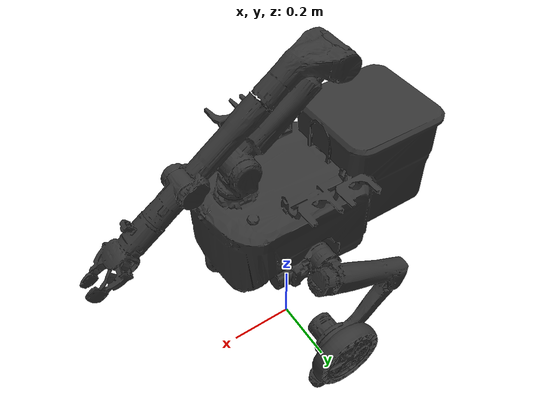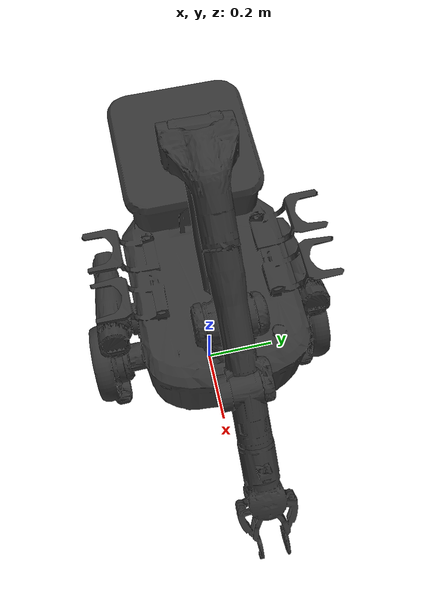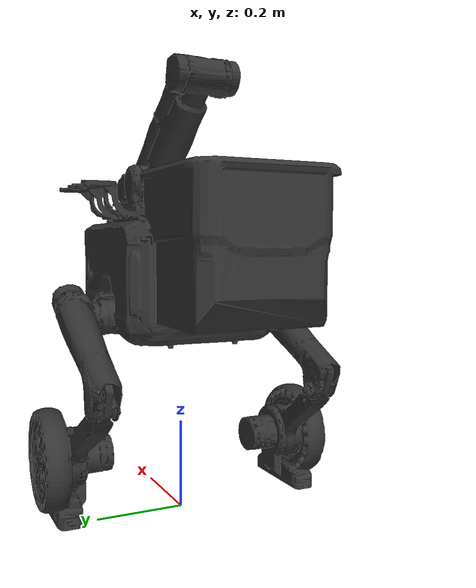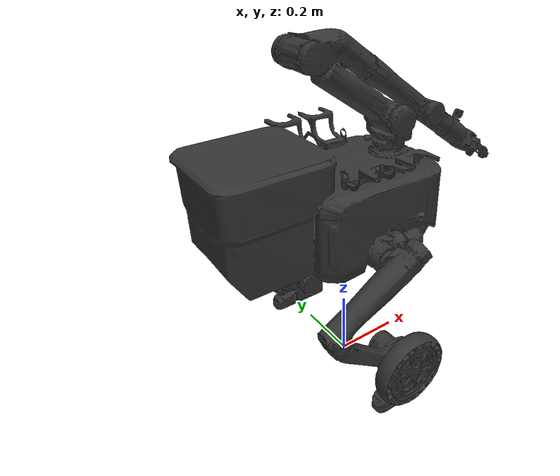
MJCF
<mujoco model="cowa_wheel_legged_v0.2">
  <compiler angle="radian" meshdir="assets/" />

  <default>
    <default class="cowa_wheel_legged_v0.2">
      <default class="visual">
        <geom group="2" type="mesh" density="0" material="silver" contype="0" conaffinity="0"/>
      </default>
      <default class="collision">
        <geom group="3" rgba=".2 .6 .2 .3" type="capsule" contype="1" conaffinity="1"/>
      </default>
      <site group="5" rgba="1 0 0 1"/>
    </default>
  </default>

  <asset>
    <material name="silver" rgba="0.7 0.7 0.7 1"/>
    <material name="black" rgba="0.2 0.2 0.2 1"/>
    <mesh name="base_link" file="base_link.STL" />
    <mesh name="link1" file="link1.STL" />
    <mesh name="link2" file="link2.STL" />
    <mesh name="link3" file="link3.STL" />
    <mesh name="link4" file="link4.STL" />
    <mesh name="link5" file="link5.STL" />
    <mesh name="link6" file="link6.STL" />
    <mesh name="left_hip_roll_link" file="left_hip_roll_link.STL" />
    <mesh name="left_hip_pitch_link" file="left_hip_pitch_link.STL" />
    <mesh name="left_knee_pitch_link" file="left_knee_pitch_link.STL" />
    <mesh name="left_wheel_link" file="left_wheel_link.STL" />
    <mesh name="left_foot_link" file="left_foot_link.STL" />
    <mesh name="right_hip_roll_link" file="right_hip_roll_link.STL" />
    <mesh name="right_hip_pitch_link" file="right_hip_pitch_link.STL" />
    <mesh name="right_knee_pitch_link" file="right_knee_pitch_link.STL" />
    <mesh name="right_wheel_link" file="right_wheel_link.STL" />
    <mesh name="right_foot_link" file="right_foot_link.STL" />
  </asset>

  <worldbody>
    <body name="base_link" pos="0 0 0.4" childclass="cowa_wheel_legged_v0.2">
      <light pos="0 0 2" mode="trackcom" castshadow="false"/>
      <camera name="tracking" pos="1.734 -1.135 .35" xyaxes="0.552 0.834 -0.000 -0.170 0.112 0.979" mode="trackcom"/>
      <freejoint/>
      <inertial pos="0.0212934 -0.0014429 0.1189475" mass="23.2516" diaginertia="0.3541676 0.4335438 0.4571385"/>
      <geom class="visual" material="black" mesh="base_link" />
      <geom name="base_link_collision" class="collision" pos="-0.08 0 0.15" type="box" size="0.325 0.17 0.15" />
      <site name="imu_in_base_link" size="0.01" pos="0 0 0"/>
      <body name="link1" pos="0.157 0 0.2918">
        <inertial pos="-0.0000229 0.0032524 0.0308719" mass="0.4349" diaginertia="0.0014681 0.000661 0.0011984"/>
        <geom class="visual" material="black" mesh="link1" />
        <body name="link2" pos="0 -0.0511 0.067" quat="-0.6743044 -0.6743003 -0.2128792 0.2128735">
          <inertial pos="-0.1427818 -0.0005125 -0.0460443" mass="2.8874" diaginertia="0.0031652 0.0742936 0.0733537"/>
          <geom class="visual" material="black" mesh="link2" />
          <body name="link3" pos="-0.34 0 0.0009" quat="0.7071055 0 0 -0.7071081">
            <inertial pos="-0.0549261 0.1078005 -0.0523482" mass="1.1011" diaginertia="0.0058093 0.0020871 0.0057772"/>
            <geom class="visual" material="black" mesh="link3" />
            <body name="link4" pos="-0.07 0.1892 -0.052" quat="0.7071055 -0.7071081 0 0">
              <inertial pos="0.0003687 0.0080424 0.1381952" mass="0.4403" diaginertia="0.0036534 0.0035753 0.0003575"/>
              <geom class="visual" material="black" mesh="link4" />
              <body name="link5" pos="0 0.0265 0.2658" quat="-0.0000026 -0.0000026 0.7071081 0.7071055">
                <inertial pos="-0.000018 0.0373704 -0.0311214" mass="1.3844" diaginertia="0.0027966 0.0008357 0.0026999"/>
                <geom class="visual" material="black" mesh="link5" />
                <body name="link6" pos="0 0.1085 -0.0265" quat="-0.0000026 -0.0000026 -0.7071081 -0.7071055">
                  <inertial pos="-0.005736 0.0009536 0.0348138" mass="0.5544" diaginertia="0.000254 0.0004052 0.0004041"/>
                  <geom class="visual" material="black" mesh="link6" />
                </body>
              </body>
            </body>
          </body>
        </body>
      </body>
      <body name="left_hip_roll_link" pos="0.05 0.1475 0.0495" quat="-0.0000026 0.7071055 -0.0000026 -0.7071081">
        <joint name="left_hip_roll_joint" type="hinge" axis="0 0 1" limited="true" range="-0.523 0.523" actuatorfrclimited="true" actuatorfrcrange="-35 35" damping="0" frictionloss="0"/>
        <inertial pos="0.0001852 -0.0080838 0.0462372" mass="1.1238" diaginertia="0.0011152 0.0009023 0.0010161"/>
        <geom class="visual" material="black" mesh="left_hip_roll_link" />
        <geom name="left_hip_roll_collision" class="collision" pos="0 -0.02 0.05" quat="0.7073883 0.7068252 0 0" type="cylinder" size="0.04 0.05" />
        <body name="left_hip_pitch_link" pos="0 -0.0495 0.05" quat="0.6324757 0.6324781 -0.3161844 0.3161856">
          <joint name="left_hip_pitch_joint" type="hinge" axis="0 0 1" limited="true" range="-1.74 0.87" actuatorfrclimited="true" actuatorfrcrange="-105 105" damping="0" frictionloss="0"/>
          <inertial pos="0.0622698 0.00738 0.0442843" mass="2.62" diaginertia="0.0021896 0.0269346 0.0273978"/>
          <geom class="visual" material="black" mesh="left_hip_pitch_link" />
          <geom name="left_hip_pitch_collision" class="collision" pos="0.1 0.02 0.04" quat="0.7051258 -0.0564857 0.7045645 0.0565307" type="cylinder" size="0.04 0.175" />
          <body name="left_knee_pitch_link" pos="0.25 0 0.054" quat="0.6000362 0 0 -0.7999729">
            <joint name="left_knee_pitch_joint" type="hinge" axis="0 0 -1" limited="true" range="-0.87 0.87" actuatorfrclimited="true" actuatorfrcrange="-230 230" damping="0" frictionloss="0"/>
            <inertial pos="0.2140681 0.0009074 0.0327129" mass="2.4368" diaginertia="0.0031162 0.0188822 0.019755"/>
            <geom class="visual" material="black" mesh="left_knee_pitch_link" />
            <geom name="left_hip_knee_collision" class="collision" pos="0.1 0.01 0" quat="0.5175881 0.5171761 0.4817994 0.4821833" type="cylinder" size="0.03 0.15" />
            <body name="left_wheel_link" pos="0.25 0.0000448 0.0685" quat="0.9486895 0 0 -0.3162092">
              <joint name="left_wheel_joint" type="hinge" axis="0 0 1" actuatorfrclimited="true" actuatorfrcrange="-40 40" damping="0" frictionloss="0"/>
              <inertial pos="0 0 -0.0125679" mass="1.0699" diaginertia="0.0039929 0.0039929 0.0076317"/>
              <geom class="visual" material="black" mesh="left_wheel_link" />
              <geom name="left_wheel_collision" class="collision" pos="0 0 -0.016" type="cylinder" size="0.11 0.02" />
            </body>
            <body name="left_foot_link" pos="0.25 0.0000448 0.0065" quat="-0.0000035 0.9486898 -0.3162083 0.0000012">
              <site name="left_foot" rgba="1 0 0 1" pos="0 -0.118 0"/>
              <joint name="left_foot_joint" type="hinge" axis="0 0 -1" limited="true" range="-2.79 1.04" actuatorfrclimited="true" actuatorfrcrange="-58 58" damping="0" frictionloss="0"/>
              <inertial pos="-0.0003002 -0.025041 0.0248763" mass="1.7403" diaginertia="0.0054939 0.0034915 0.0058443"/>
              <geom class="visual" material="black" mesh="left_foot_link" />
              <geom name="left_foot_actuator_collision" pos="0 0 0.02" rgba="0.9373 0.2667 0.2667 1" group="3" contype="1" conaffinity="1" type="cylinder" size="0.04 0.065" />
              <geom name="left_foot1_collision" pos="0 -0.118 0" quat="0.5003982 0.4999998 0.4996018 0.4999998" rgba="0.9373 0.2667 0.2667 1" group="3" contype="1" conaffinity="1" type="cylinder" size="0.005 0.07" />
              <geom name="left_foot2_collision" pos="0.09 -0.118 0" rgba="0.9373 0.2667 0.2667 1" group="3" contype="1" conaffinity="1" type="sphere" size="0.005" />
              <geom name="left_foot3_collision" pos="0.09 -0.118 -0.042" rgba="0.9373 0.2667 0.2667 1" group="3" contype="1" conaffinity="1" type="sphere" size="0.005" />
              <geom name="left_foot4_collision" pos="0 -0.118 -0.045" quat="0.5003982 0.4999998 0.4996018 0.4999998" rgba="0.9373 0.2667 0.2667 1" group="3" contype="1" conaffinity="1" type="cylinder" size="0.005 0.07" />
              <geom name="left_foot5_collision" pos="-0.09 -0.118 -0.04" rgba="0.9373 0.2667 0.2667 1" group="3" contype="1" conaffinity="1" type="sphere" size="0.005" />
              <geom name="left_foot6_collision" pos="-0.09 -0.118 0" rgba="0.9373 0.2667 0.2667 1" group="3" contype="1" conaffinity="1" type="sphere" size="0.005" />
            </body>
          </body>
        </body>
      </body>
      <body name="right_hip_roll_link" pos="0.05 -0.1475 0.0495" quat="-0.0000026 0.7071055 -0.0000026 -0.7071081">
        <joint name="right_hip_roll_joint" type="hinge" axis="0 0 -1" limited="true" range="-0.523 0.523" actuatorfrclimited="true" actuatorfrcrange="-35 35" damping="0" frictionloss="0"/>
        <inertial pos="0.0001852 0.0080838 0.0462372" mass="1.1238" diaginertia="0.0011152 0.0009023 0.0010161"/>
        <geom class="visual" material="black" mesh="right_hip_roll_link" />
        <geom name="right_hip_roll_collision" class="collision" pos="0 0.02 0.05" quat="0.7073883 0.7068252 0 0" type="cylinder" size="0.04 0.05" />
        <body name="right_hip_pitch_link" pos="0 0.0495 0.05" quat="0.6324757 -0.6324781 -0.3161844 -0.3161856">
          <joint name="right_hip_pitch_joint" type="hinge" axis="0 0 -1" limited="true" range="-1.74 0.87" actuatorfrclimited="true" actuatorfrcrange="-105 105" damping="0" frictionloss="0"/>
          <inertial pos="0.0622698 -0.00738 0.0442843" mass="2.62" diaginertia="0.0021896 0.0269346 0.0273978"/>
          <geom class="visual" material="black" mesh="right_hip_pitch_link" />
          <geom name="right_hip_pitch_collision" class="collision" pos="0.1 -0.02 0.04" quat="0.7051258 0.0564857 0.7045645 -0.0565307" type="cylinder" size="0.04 0.175" />
          <body name="right_knee_pitch_link" pos="0.25 0 0.054" quat="0.6000362 0 0 0.7999729">
            <joint name="right_knee_pitch_joint" type="hinge" axis="0 0 1" limited="true" range="-0.87 0.87" actuatorfrclimited="true" actuatorfrcrange="-230 230" damping="0" frictionloss="0"/>
            <inertial pos="0.2140681 -0.0009074 0.0327129" mass="2.4368" diaginertia="0.0031162 0.0188822 0.019755"/>
            <geom class="visual" material="black" mesh="right_knee_pitch_link" />
            <geom name="right_knee_pitch_collision" class="collision" pos="0.1 -0.01 0" quat="0.5175881 0.5171761 -0.4817994 -0.4821833" type="cylinder" size="0.03 0.15" />
            <body name="right_wheel_link" pos="0.25 -0.0000448 0.0685" quat="0.9486898 0 0 0.3162083">
              <joint name="right_wheel_joint" type="hinge" axis="0 0 -1" actuatorfrclimited="true" actuatorfrcrange="-40 40" damping="0" frictionloss="0"/>
              <inertial pos="0 0 -0.0125679" mass="1.0699" diaginertia="0.0039929 0.0039929 0.0076317"/>
              <geom class="visual" material="black" mesh="right_wheel_link" />
              <geom name="right_wheel_collision" class="collision" pos="0 0 -0.016" type="cylinder" size="0.11 0.02" />
            </body>
            <body name="right_foot_link" pos="0.25 -0.0000448 0.0065" quat="-0.0000035 0.9486898 0.3162083 -0.0000012">
              <site name="right_foot" rgba="1 0 0 1" pos="0 0.118 0"/>
              <joint name="right_foot_joint" type="hinge" axis="0 0 1" limited="true" range="-2.79 1.04" actuatorfrclimited="true" actuatorfrcrange="-58 58" damping="0" frictionloss="0"/>
              <inertial pos="0.0002112 0.0254561 0.0248695" mass="1.7602" diaginertia="0.0055319 0.0034959 0.0058867"/>
              <geom class="visual" material="black" mesh="right_foot_link" />
              <geom name="right_foot_actuator_collision" pos="0 0 0.02" rgba="0.9373 0.2667 0.2667 1" group="3" contype="1" conaffinity="1" type="cylinder" size="0.04 0.065" />
              <geom name="right_foot1_collision" pos="0 0.118 0" quat="0.5003982 0.4999998 0.4996018 0.4999998" rgba="0.9373 0.2667 0.2667 1" group="3" contype="1" conaffinity="1" type="cylinder" size="0.005 0.07" />
              <geom name="right_foot2_collision" pos="0 0.118 -0.045" quat="0.5003982 0.4999998 0.4996018 0.4999998" rgba="0.9373 0.2667 0.2667 1" group="3" contype="1" conaffinity="1" type="cylinder" size="0.005 0.07" />
              <geom name="right_foot3_collision" pos="0.09 0.118 0" rgba="0.9373 0.2667 0.2667 1" group="3" contype="1" conaffinity="1" type="sphere" size="0.005" />
              <geom name="right_foot4_collision" pos="0.09 0.118 -0.042" rgba="0.9373 0.2667 0.2667 1" group="3" contype="1" conaffinity="1" type="sphere" size="0.005" />
              <geom name="right_foot5_collision" pos="-0.09 0.118 -0.04" rgba="0.9373 0.2667 0.2667 1" group="3" contype="1" conaffinity="1" type="sphere" size="0.005" />
              <geom name="right_foot6_collision" pos="-0.09 0.118 0" rgba="0.9373 0.2667 0.2667 1" group="3" contype="1" conaffinity="1" type="sphere" size="0.005" />
            </body>
          </body>
        </body>
      </body>
    </body>
  </worldbody>
  <contact>
    <exclude body1="left_hip_roll_link" body2="left_hip_pitch_link"/>
    <exclude body1="left_hip_pitch_link" body2="left_knee_pitch_link"/>
    <exclude body1="left_knee_pitch_link" body2="left_wheel_link"/>
    <exclude body1="left_knee_pitch_link" body2="left_foot_link"/>
    <exclude body1="left_wheel_link" body2="left_foot_link"/>
    <exclude body1="right_hip_roll_link" body2="right_hip_pitch_link"/>
    <exclude body1="right_hip_pitch_link" body2="right_knee_pitch_link"/>
    <exclude body1="right_knee_pitch_link" body2="right_wheel_link"/>
    <exclude body1="right_knee_pitch_link" body2="right_foot_link"/>
    <exclude body1="right_wheel_link" body2="right_foot_link"/>
    <exclude body1="base_link" body2="right_hip_roll_link"/>
    <exclude body1="base_link" body2="left_hip_roll_link"/>
  </contact>
  <sensor>
    <gyro name="imu_ang_vel" site="imu_in_base_link"/>
    <velocimeter name="imu_lin_vel" site="imu_in_base_link"/>
    <accelerometer name="imu_lin_acc" site="imu_in_base_link"/>
    <subtreeangmom name="root_angmom" body="base_link"/>
  </sensor>
</mujoco>
